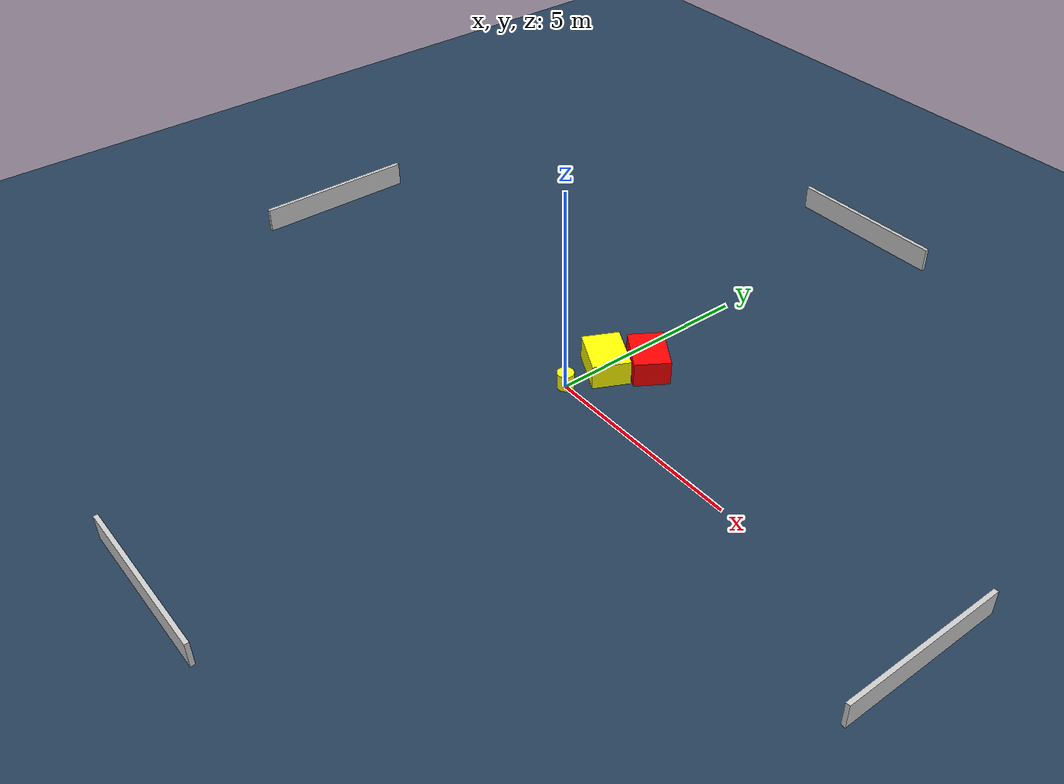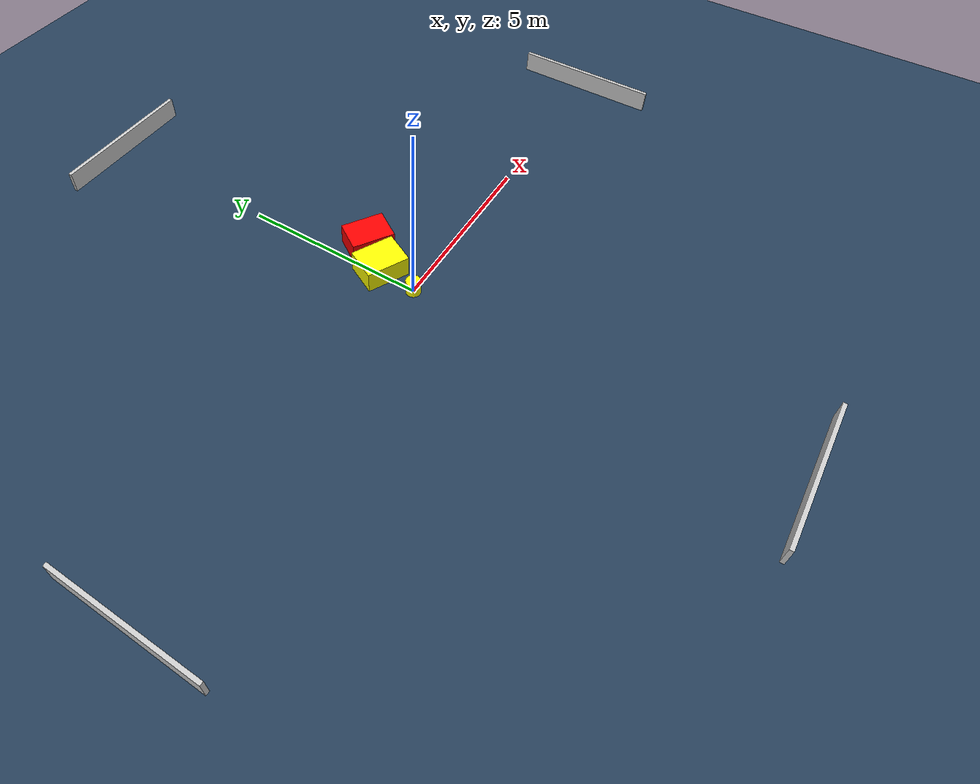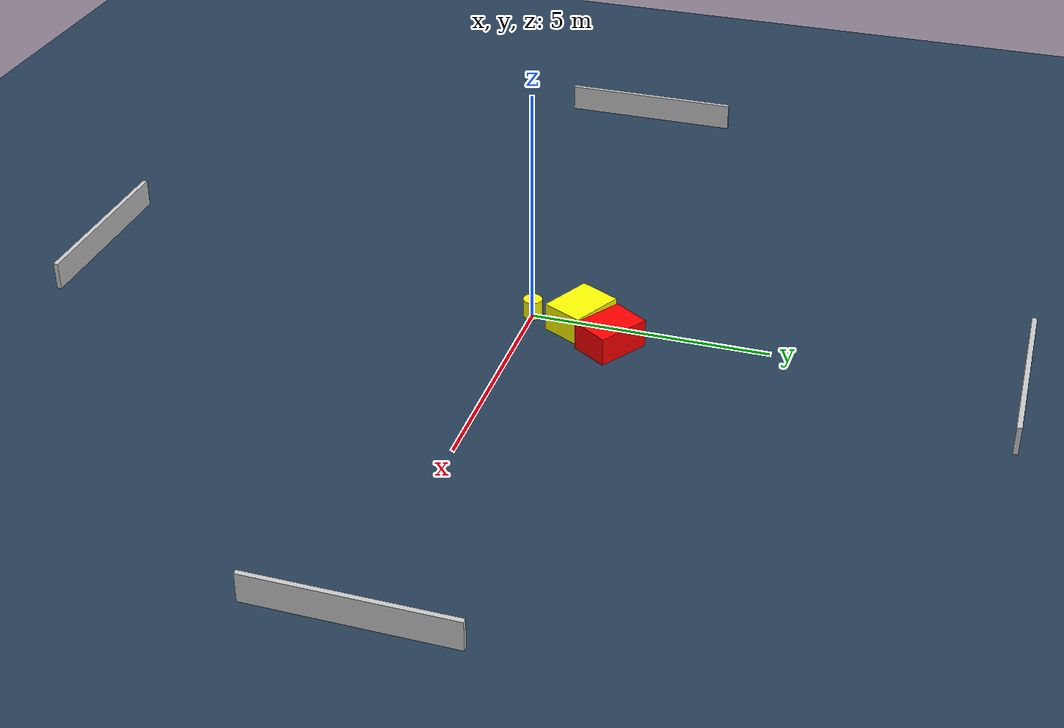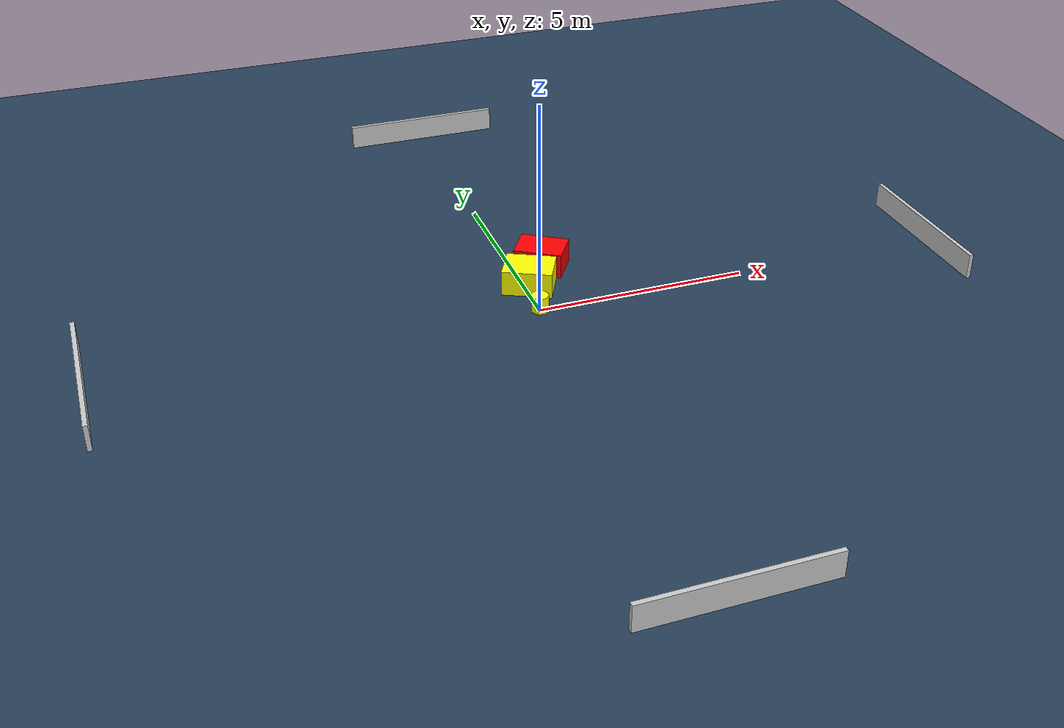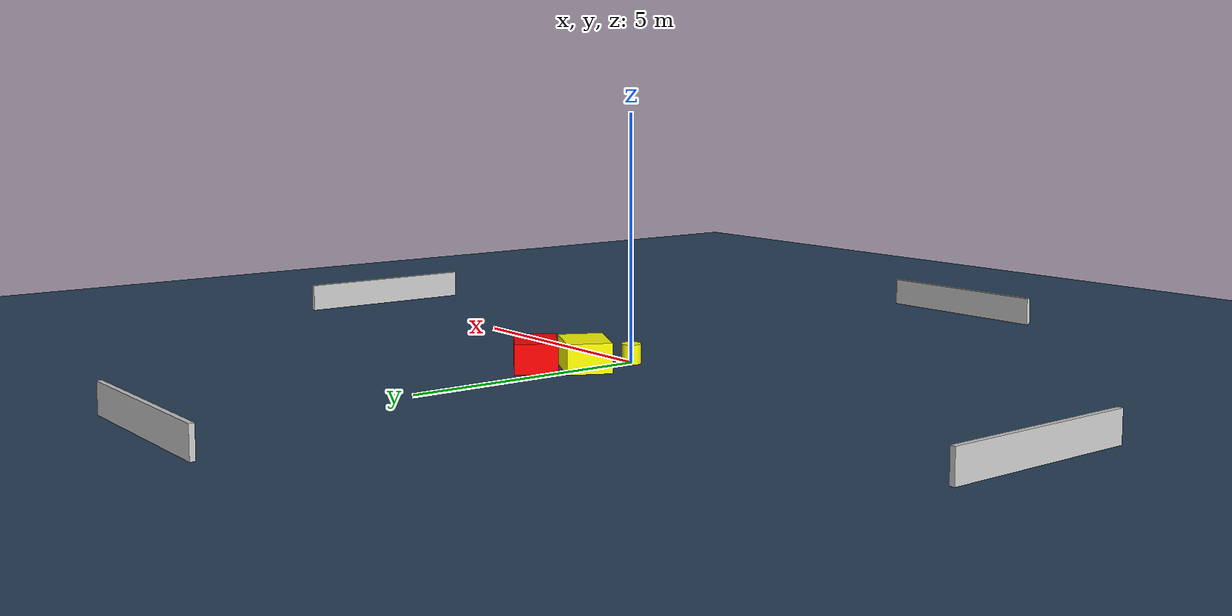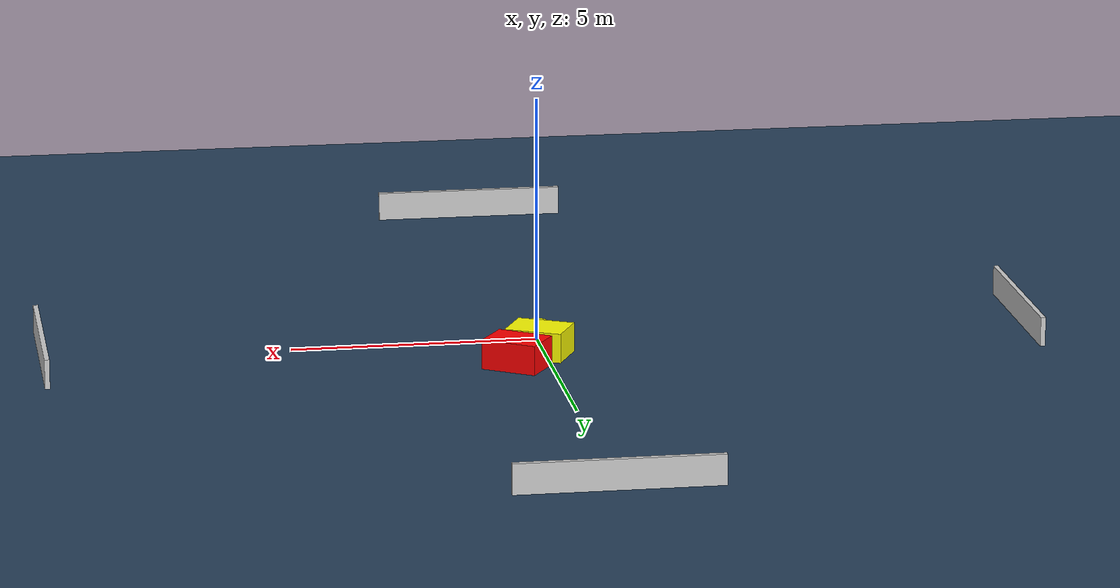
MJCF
<?xml version="1.0" ?>
<mujoco model="generated_environment">
  <option timestep="0.01" integrator="RK4" cone="elliptic"/>
  <default>
    <geom density="1"/>
  </default>
  <asset>
    <texture builtin="gradient" height="3072" name="skybox" rgb1="0.3 0.5 0.7" rgb2="0 0 0" type="skybox" width="512"/>
    <texture builtin="checker" height="300" name="groundplane" rgb1="0.2 0.3 0.4" rgb2="0.1 0.2 0.3" type="2d" width="300"/>
    <material name="groundplane" reflectance="0.2" texrepeat="5 5" texture="groundplane"/>
  </asset>
  <worldbody>
    <light dir="0 0 -1" directional="true" pos="0 0 1.5"/>
    <geom condim="3" friction="0.5 0.005 0.001" material="groundplane" name="floor" pos="0 0 0" size="0 0 0.05" type="plane"/>
    <body name="walls">
      <geom name="wall_1" condim="4" pos="-10.0 0.0 0.3" rgba="0.800000011920929 0.800000011920929 0.800000011920929 1.0" size="0.05 2.0 0.3" type="box"/>
      <geom name="wall_2" condim="4" pos="10.0 0.0 0.3" rgba="0.800000011920929 0.800000011920929 0.800000011920929 1.0" size="0.05 2.0 0.3" type="box"/>
      <geom name="wall_3" condim="4" pos="0.0 -10.0 0.3" rgba="0.800000011920929 0.800000011920929 0.800000011920929 1.0" size="2.0 0.05 0.3" type="box"/>
      <geom name="wall_4" condim="4" pos="0.0 10.0 0.3" rgba="0.800000011920929 0.800000011920929 0.800000011920929 1.0" size="2.0 0.05 0.3" type="box"/>
    </body>
    <body name="robot">
      <joint name="joint_x" type="slide" pos="0 0 0" axis="1 0 0"/>
      <joint name="joint_y" type="slide" pos="0 0 0" axis="0 1 0"/>
      <geom name="robot" type="cylinder" pos="0.0 0.0 0.2" size="0.2 0.2 0.0" mass="5.0" friction="1.0 0.005 0.0001" condim="4" rgba="1.0 1.0 0.0 1.0"/>
    </body>
    <body name="obstacle_1_movable">
      <geom name="obstacle_1_movable" condim="4" pos="0.1162955312020221 1.0739087612424294 0.3" euler="0 0 333.2736612055005" friction="0.0 0.005 0.001" rgba="1.0 1.0 0.0 1.0" size="0.5857185831868146 0.4479962110976935 0.3" type="box" mass="0.1"/>
      <joint type="free"/>
    </body>
    <body name="obstacle_2_static">
      <geom name="obstacle_2_static" condim="4" pos="0.6925515632289251 1.853858733862308 0.3" euler="0 0 147.0646783509964" friction="0.0 0.005 0.001" rgba="1.0 0.0 0.0 1.0" size="0.5761265541904228 0.4239900305621125 0.3" type="box"/>
    </body>
  </worldbody>
  <actuator>
    <motor name="actuator_x" joint="joint_x" gear="1" ctrlrange="-1 1"/>
    <motor name="actuator_y" joint="joint_y" gear="1" ctrlrange="-1 1"/>
  </actuator>
</mujoco>
